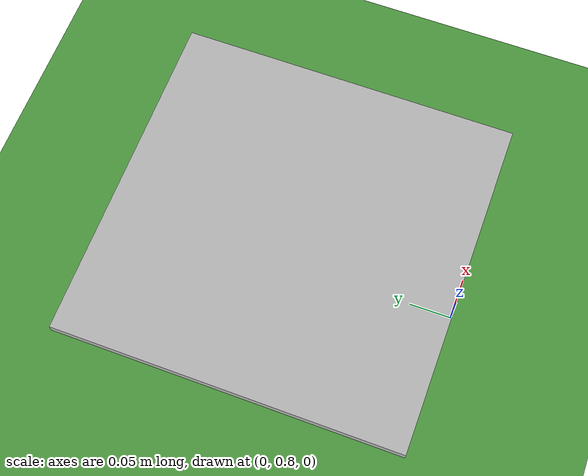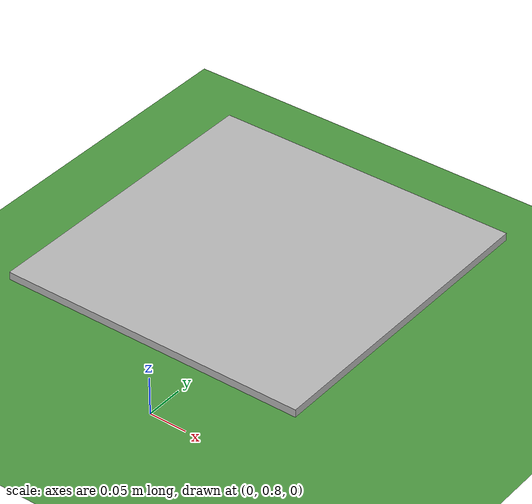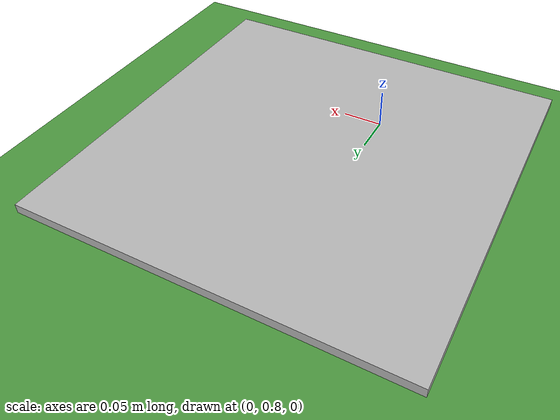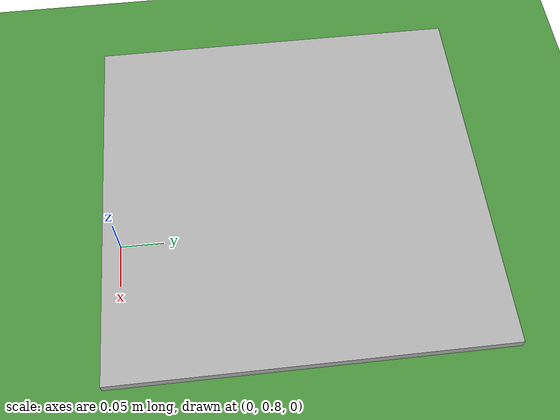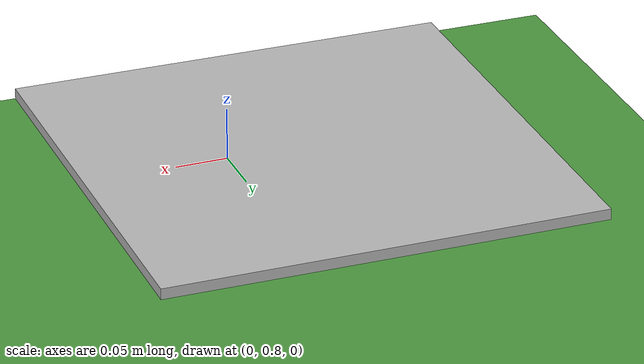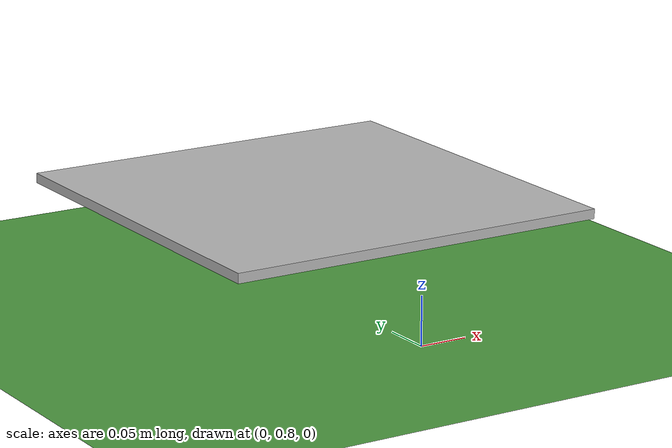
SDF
<?xml version="1.0" ?>
<sdf version="1.5">
  <world name="default">
    <!-- A global light source -->
    <include>
      <uri>model://sun</uri>
    </include>
    <!-- A ground plane -->
    <physics name='default_physics' default='0' type='ode'>
      <gravity>0 0 -9.8066</gravity>
      <ode>
        <solver>
          <type>quick</type>
          <iters>10</iters>
          <sor>1.3</sor>
          <use_dynamic_moi_rescaling>0</use_dynamic_moi_rescaling>
        </solver>
        <constraints>
          <cfm>0</cfm>
          <erp>0.2</erp>
          <contact_max_correcting_vel>100</contact_max_correcting_vel>
          <contact_surface_layer>0.001</contact_surface_layer>
        </constraints>
      </ode>
      <max_step_size>0.004</max_step_size>
      <real_time_factor>1</real_time_factor>
      <real_time_update_rate>250</real_time_update_rate>
      <magnetic_field>6.0e-6 2.3e-5 -4.2e-5</magnetic_field>
    </physics>

    <model name="ground_plane">
      <static>true</static>
      <link name="link">
        <collision name="collision">
          <geometry>
            <plane>
              <normal>0 0 1</normal>
              <size>100 100</size>
            </plane>
          </geometry>
            <friction>
              <ode>
                <mu>100</mu>
                <mu2>50</mu2>
              </ode>
            </friction>
        </collision>
        <visual name="grass">
          <pose>0 0 -0.005 0 0 0</pose>
          <cast_shadows>false</cast_shadows>
          <geometry>
            <plane>
              <normal>0 0 1</normal>
              <size>100 100</size>
            </plane>
          </geometry>
          <material>
            <script>
              <uri>file://media/materials/scripts/gazebo.material</uri>
              <name>Gazebo/Grass</name>
            </script>
          </material>
        </visual>

      </link>
    </model>

    <model name="apriltag">
      <static>true</static>
      <pose> 0 1.0 0.1 0 0 0 </pose>
      <include>
        <uri>model://apriltag_48</uri>
      </include>
    </model>

  </world>
</sdf>

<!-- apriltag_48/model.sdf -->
<sdf version='1.5'>
  <model name='apriltag_48'>
    <link name='link'>
    <pose frame=''>0 0 0 0 0 0</pose>
      <visual name='visual'>
        <geometry>
          <box>
          <size>0.4 0.4 0.01</size>
          </box>
        </geometry>
        <material>
          <script>
            <uri>model://apriltag_48/materials/scripts</uri>
            <uri>model://apriltag_48/materials/textures</uri>
            <name>apriltag</name>
          </script>
        </material>
      </visual>
      <collision name="collision">
        <geometry>
          <box>
            <size>0.5 0.5 0.01</size>
          </box>
        </geometry>
        <friction>
          <ode>
            <mu>100</mu>
            <mu2>100</mu2>
          </ode>
        </friction>
      </collision>
     </link>
  </model>
</sdf>
